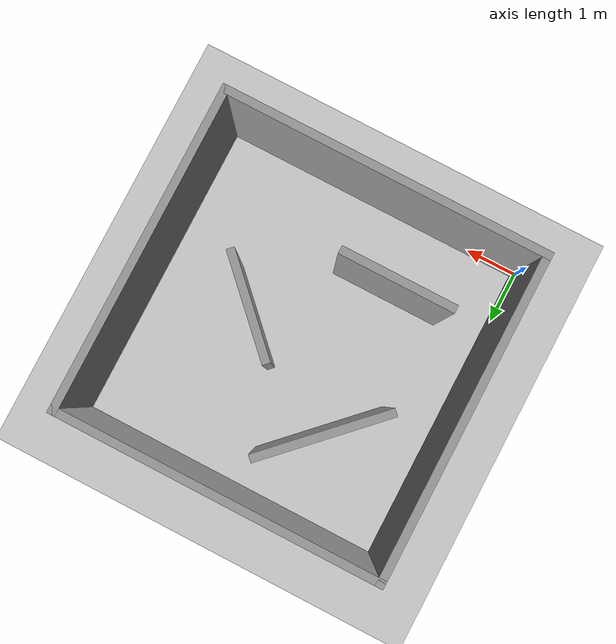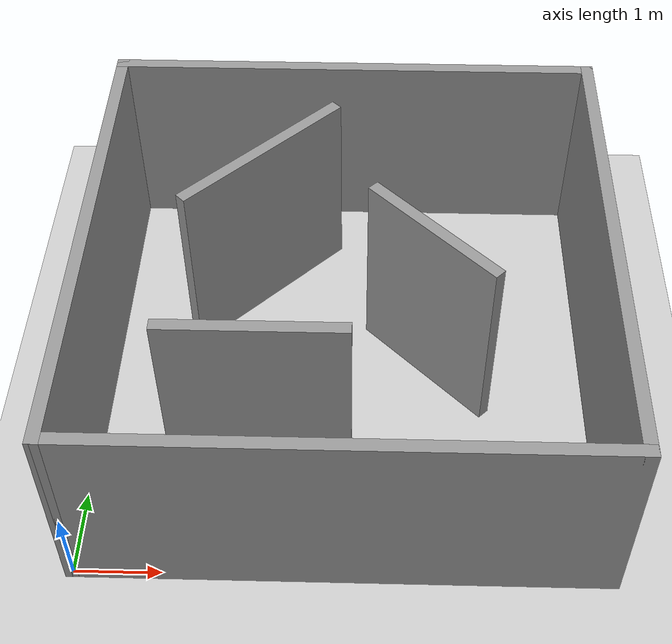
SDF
<sdf version="1.7">
 <world name="default">
  <model name="ground_plane">
   <static>1</static>
   <link name="link">
    <collision name="collision">
     <geometry><plane><normal>0 0 1</normal><size>100 100</size></plane></geometry>
     <surface><friction><ode><mu>100</mu><mu2>50</mu2></ode></friction></surface>
    </collision>
    <visual name="visual">
     <cast_shadows>0</cast_shadows>
     <geometry><plane><normal>0 0 1</normal><size>100 100</size></plane></geometry>
     <material>
      <script><uri>file://media/materials/scripts/gazebo.material</uri><name>Gazebo/Grey</name></script>
     </material>
    </visual>
   </link>
  </model>
  <gravity>0 0 -9.8</gravity>
  <magnetic_field>6e-06 2.3e-05 -4.2e-05</magnetic_field>
  <atmosphere type="adiabatic"/>
  <physics type="ode">
   <max_step_size>0.001</max_step_size>
   <real_time_factor>1</real_time_factor>
   <real_time_update_rate>1000</real_time_update_rate>
  </physics>
  <scene><ambient>0.4 0.4 0.4 1</ambient><background>0.7 0.7 0.7 1</background><shadows>1</shadows></scene>
  <audio><device>default</device></audio>
  <spherical_coordinates>
   <surface_model>EARTH_WGS84</surface_model>
   <latitude_deg>0</latitude_deg>
   <longitude_deg>0</longitude_deg>
   <elevation>0</elevation>
   <heading_deg>0</heading_deg>
  </spherical_coordinates>
  <model name="neuro_lab2">
   <pose>3 3 0 0 -0 0</pose>
   <link name="Wall_1">
    <collision name="Wall_1_Collision">
     <geometry><box><size>6.15 0.15 2.5</size></box></geometry>
     <pose>0 0 1.25 0 -0 0</pose>
    </collision>
    <visual name="Wall_1_Visual">
     <pose>0 0 1.25 0 -0 0</pose>
     <geometry><box><size>6.15 0.15 2.5</size></box></geometry>
     <material>
      <script><uri>file://media/materials/scripts/gazebo.material</uri><name>Gazebo/Grey</name></script>
      <ambient>1 1 1 1</ambient>
     </material>
     <meta><layer>0</layer></meta>
    </visual>
    <pose>0 -3 0 0 -0 0</pose>
   </link>
   <link name="Wall_12">
    <collision name="Wall_12_Collision">
     <geometry><box><size>2 0.15 2.5</size></box></geometry>
     <pose>0 0 1.25 0 -0 0</pose>
    </collision>
    <visual name="Wall_12_Visual">
     <pose>0 0 1.25 0 -0 0</pose>
     <geometry><box><size>2 0.15 2.5</size></box></geometry>
     <material>
      <script><uri>file://media/materials/scripts/gazebo.material</uri><name>Gazebo/Grey</name></script>
      <ambient>1 1 1 1</ambient>
     </material>
     <meta><layer>0</layer></meta>
    </visual>
    <pose>0.977926 0.022074 0 0 -0 2.35619</pose>
   </link>
   <link name="Wall_17">
    <collision name="Wall_17_Collision">
     <geometry><box><size>2.5 0.15 2.5</size></box></geometry>
     <pose>0 0 1.25 0 -0 0</pose>
    </collision>
    <visual name="Wall_17_Visual">
     <pose>0 0 1.25 0 -0 0</pose>
     <geometry><box><size>2.5 0.15 2.5</size></box></geometry>
     <material>
      <script><uri>file://media/materials/scripts/gazebo.material</uri><name>Gazebo/Grey</name></script>
      <ambient>1 1 1 1</ambient>
     </material>
     <meta><layer>0</layer></meta>
    </visual>
    <pose>-1.08385 1.33015 0 0 -0 0.785398</pose>
   </link>
   <link name="Wall_2">
    <collision name="Wall_2_Collision">
     <geometry><box><size>6.15 0.15 2.5</size></box></geometry>
     <pose>0 0 1.25 0 -0 0</pose>
    </collision>
    <visual name="Wall_2_Visual">
     <pose>0 0 1.25 0 -0 0</pose>
     <geometry><box><size>6.15 0.15 2.5</size></box></geometry>
     <material>
      <script><uri>file://media/materials/scripts/gazebo.material</uri><name>Gazebo/Grey</name></script>
      <ambient>1 1 1 1</ambient>
     </material>
     <meta><layer>0</layer></meta>
    </visual>
    <pose>3 -0 0 0 -0 1.5708</pose>
   </link>
   <link name="Wall_3">
    <collision name="Wall_3_Collision">
     <geometry><box><size>6.15 0.15 2.5</size></box></geometry>
     <pose>0 0 1.25 0 -0 0</pose>
    </collision>
    <visual name="Wall_3_Visual">
     <pose>0 0 1.25 0 -0 0</pose>
     <geometry><box><size>6.15 0.15 2.5</size></box></geometry>
     <material>
      <script><uri>file://media/materials/scripts/gazebo.material</uri><name>Gazebo/Grey</name></script>
      <ambient>1 1 1 1</ambient>
     </material>
     <meta><layer>0</layer></meta>
    </visual>
    <pose>0 3 0 0 -0 3.14159</pose>
   </link>
   <link name="Wall_4">
    <collision name="Wall_4_Collision">
     <geometry><box><size>6.15 0.15 2.5</size></box></geometry>
     <pose>0 0 1.25 0 -0 0</pose>
    </collision>
    <visual name="Wall_4_Visual">
     <pose>0 0 1.25 0 -0 0</pose>
     <geometry><box><size>6.15 0.15 2.5</size></box></geometry>
     <material>
      <script><uri>file://media/materials/scripts/gazebo.material</uri><name>Gazebo/Grey</name></script>
      <ambient>1 1 1 1</ambient>
     </material>
     <meta><layer>0</layer></meta>
    </visual>
    <pose>-3 -0 0 0 -0 -1.5708</pose>
   </link>
   <link name="Wall_7">
    <collision name="Wall_7_Collision">
     <geometry><box><size>2.15 0.15 2.5</size></box></geometry>
     <pose>0 0 1.25 0 -0 0</pose>
    </collision>
    <visual name="Wall_7_Visual">
     <pose>0 0 1.25 0 -0 0</pose>
     <geometry><box><size>2.15 0.15 2.5</size></box></geometry>
     <material>
      <script><uri>file://media/materials/scripts/gazebo.material</uri><name>Gazebo/Grey</name></script>
      <ambient>1 1 1 1</ambient>
     </material>
     <meta><layer>0</layer></meta>
    </visual>
    <pose>-1 -1.5 0 0 -0 0</pose>
   </link>
   <static>1</static>
  </model>
  <light name="user_directional_light_0" type="directional">
   <pose>-4.98404 -5.04107 1 0 -0 0</pose>
   <diffuse>0.5 0.5 0.5 1</diffuse>
   <specular>0.1 0.1 0.1 1</specular>
   <direction>0.1 0.1 -0.9</direction>
   <attenuation>
    <range>20</range>
    <constant>0.5</constant>
    <linear>0.01</linear>
    <quadratic>0.001</quadratic>
   </attenuation>
  </light>
 </world>
</sdf>
